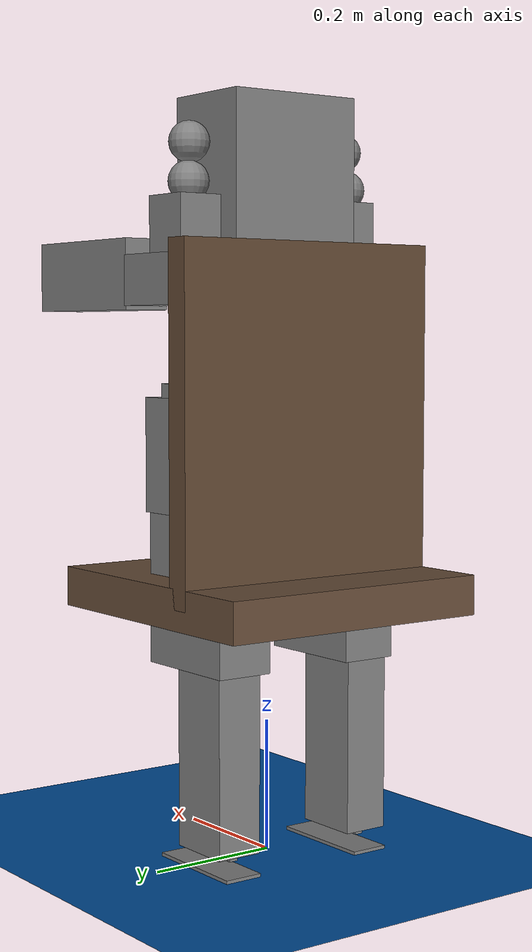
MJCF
<mujoco model="MuJoCo Model">
  <compiler angle="radian"/>

  <option gravity="0 0 -9.81" integrator="implicitfast">
    <flag multiccd="disable"/>
  </option>

  <worldbody>
    <geom name="ground_plane_0" size="5 5 5" type="plane" contype="2" conaffinity="2147483645" friction="2 0.005 0.0001" solref="0.02" rgba="0 0.3 0.6 1"/>
    <geom name="chair_seat" type="box" pos="0 0 0.40" size="0.22 0.22 0.03" contype="2" conaffinity="2147483645" friction="1.2 0.01 0.001" solref="0.01 1" rgba="0.4 0.3 0.22 1"/>
    <geom name="chair_back" type="box" pos="-0.085 0 0.66" size="0.02 0.22 0.26" contype="2" conaffinity="2147483645" friction="1.2 0.01 0.001" solref="0.01 1" rgba="0.38 0.28 0.2 1"/>
    <body name="pelvis" pos="0 0 0.78">
      <inertial pos="0 0 0" quat="1 0 -0.000399148 0" mass="3.814" diaginertia="0.010549 0.0093089 0.0079184"/>
      <joint name="root_free" type="free"/>
      <geom name="shape_1_1" size="0.001" contype="4" conaffinity="2147483643" friction="1 0.005 0.0001" solref="0.02"/>
      <body name="left_hip_pitch_link" pos="0 0.064452 -0.1027">
        <inertial pos="0 0 0" quat="0.954862 0.293964 0.0302556 0.030122" mass="1.35" diaginertia="0.00181517 0.00153422 0.00116212"/>
        <joint name="left_hip_pitch_joint" pos="0 0 0" axis="0 1 0" solreflimit="-10000 -100" limited="true" range="-2.5307 2.8798" actuatorfrclimited="true" actuatorfrcrange="-88 88"/>
        <geom name="shape_2_2" size="0.0412784 0.0494054 0.0585823" pos="-0.00103767 0.0494054 -0.0214614" type="box" contype="4" conaffinity="2147483643" friction="1 0.005 0.0001" solref="0.02"/>
        <body name="left_hip_roll_link" pos="0 0.052 -0.030465">
          <inertial pos="0 0 0" quat="0.977808 -1.97146e-05 0.205576 -0.0403793" mass="1.52" diaginertia="0.00254986 0.00241169 0.00148755"/>
          <joint name="left_hip_roll_joint" pos="0 0 0" axis="0.984744 0 0.17401" solreflimit="-10000 -100" limited="true" range="-0.5236 2.9671" actuatorfrclimited="true" actuatorfrcrange="-88 88"/>
          <geom name="shape_3_3" size="0.0532396 0.0489454 0.0853044" pos="0.0269208 -0.000171173 -0.0388197" type="box" contype="8" conaffinity="2147483639" friction="1 0.005 0.0001" solref="0.02"/>
          <body name="left_hip_yaw_link" pos="0.025001 0 -0.12412">
            <inertial pos="0 0 0" quat="0.600598 0.15832 0.223482 0.751181" mass="1.702" diaginertia="0.00776166 0.00717575 0.00160139"/>
            <joint name="left_hip_yaw_joint" pos="0 0 0" axis="0 0 1" solreflimit="-10000 -100" limited="true" range="-2.7576 2.7576" actuatorfrclimited="true" actuatorfrcrange="-88 88"/>
            <geom name="shape_4_4" size="0.089817 0.0443413 0.113115" pos="-0.0374323 -0.00104196 -0.113115" type="box" contype="8" conaffinity="2147483639" friction="1 0.005 0.0001" solref="0.02"/>
            <body name="left_knee_link" pos="-0.078273 0.0021489 -0.17734">
              <inertial pos="0 0 0" quat="0.923417 -0.0327698 0.0158246 0.382068" mass="1.932" diaginertia="0.0113804 0.0112778 0.00146458"/>
              <joint name="left_knee_joint" pos="0 0 0" axis="0 1 0" solreflimit="-10000 -100" limited="true" range="-0.087267 2.8798" actuatorfrclimited="true" actuatorfrcrange="-139 139"/>
              <geom name="shape_5_5" size="0.0519081 0.0358496 0.177561" pos="0.0120115 -3.68617e-05 -0.137512" type="box" contype="16" conaffinity="2147483631" friction="1 0.005 0.0001" solref="0.02"/>
              <body name="left_ankle_pitch_link" pos="0 -9.4445e-05 -0.30001">
                <inertial pos="0 0 0" mass="0.074" diaginertia="0.0006956 0.0012358 0.0006956"/>
                <joint name="left_ankle_pitch_joint" pos="0 0 0" axis="0 1 0" solreflimit="-10000 -100" limited="true" range="-0.87267 0.5236" actuatorfrclimited="true" actuatorfrcrange="-35 35"/>
                <geom name="shape_6_6" size="0.018 0.00650001 0.0187239" pos="-0.00649999 5.78223e-05 -0.00583397" type="box" contype="16" conaffinity="2147483631" friction="1 0.005 0.0001" solref="0.02"/>
                <body name="left_ankle_roll_link" pos="0 0 -0.017558">
                  <inertial pos="0 0 0" quat="-0.000481092 0.728482 -0.000618967 0.685065" mass="0.608" diaginertia="0.00167218 0.0016161 0.000217621"/>
                  <joint name="left_ankle_roll_joint" pos="0 0 0" axis="1 0 0" solreflimit="-10000 -100" limited="true" range="-0.2618 0.2618" actuatorfrclimited="true" actuatorfrcrange="-35 35"/>
                  <geom name="shape_7_7" size="0.085 0.03 0.006" pos="0.035 0 -0.03" type="box" contype="32" conaffinity="2147483615" friction="1 0.005 0.0001" solref="0.02"/>
                </body>
              </body>
            </body>
          </body>
        </body>
      </body>
      <body name="right_hip_pitch_link" pos="0 -0.064452 -0.1027">
        <inertial pos="0 0 0" quat="0.954862 -0.293964 0.0302556 -0.030122" mass="1.35" diaginertia="0.00181517 0.00153422 0.00116212"/>
        <joint name="right_hip_pitch_joint" pos="0 0 0" axis="0 1 0" solreflimit="-10000 -100" limited="true" range="-2.5307 2.8798" actuatorfrclimited="true" actuatorfrcrange="-88 88"/>
        <geom name="shape_8_8" size="0.0412784 0.0494054 0.0585819" pos="-0.00103767 -0.0494054 -0.0214618" type="box" contype="64" conaffinity="2147483583" friction="1 0.005 0.0001" solref="0.02"/>
        <body name="right_hip_roll_link" pos="0 -0.052 -0.030465">
          <inertial pos="0 0 0" quat="0.977808 1.97146e-05 0.205576 0.0403793" mass="1.52" diaginertia="0.00254986 0.00241169 0.00148755"/>
          <joint name="right_hip_roll_joint" pos="0 0 0" axis="0.984744 0 0.17401" solreflimit="-10000 -100" limited="true" range="-2.9671 0.5236" actuatorfrclimited="true" actuatorfrcrange="-88 88"/>
          <geom name="shape_9_9" size="0.0532396 0.0489454 0.0853044" pos="0.0269208 0.000171173 -0.0388197" type="box" contype="64" conaffinity="2147483583" friction="1 0.005 0.0001" solref="0.02"/>
          <body name="right_hip_yaw_link" pos="0.025001 0 -0.12412">
            <inertial pos="0 0 0" quat="0.751181 0.223482 0.15832 0.600598" mass="1.702" diaginertia="0.00776166 0.00717575 0.00160139"/>
            <joint name="right_hip_yaw_joint" pos="0 0 0" axis="0 0 1" solreflimit="-10000 -100" limited="true" range="-2.7576 2.7576" actuatorfrclimited="true" actuatorfrcrange="-88 88"/>
            <geom name="shape_10_10" size="0.089817 0.0443413 0.113115" pos="-0.0374323 0.00104196 -0.113115" type="box" contype="128" conaffinity="2147483519" friction="1 0.005 0.0001" solref="0.02"/>
            <body name="right_knee_link" pos="-0.078273 -0.0021489 -0.17734">
              <inertial pos="0 0 0" quat="0.923438 0.0345276 0.0116334 -0.382014" mass="1.932" diaginertia="0.011374 0.0112843 0.00146452"/>
              <joint name="right_knee_joint" pos="0 0 0" axis="0 1 0" solreflimit="-10000 -100" limited="true" range="-0.087267 2.8798" actuatorfrclimited="true" actuatorfrcrange="-139 139"/>
              <geom name="shape_11_11" size="0.0519081 0.035848 0.177561" pos="0.0120115 3.48222e-05 -0.137512" type="box" contype="128" conaffinity="2147483519" friction="1 0.005 0.0001" solref="0.02"/>
              <body name="right_ankle_pitch_link" pos="0 9.4445e-05 -0.30001">
                <inertial pos="0 0 0" mass="0.074" diaginertia="0.0006956 0.0012358 0.0006956"/>
                <joint name="right_ankle_pitch_joint" pos="0 0 0" axis="0 1 0" solreflimit="-10000 -100" limited="true" range="-0.87267 0.5236" actuatorfrclimited="true" actuatorfrcrange="-35 35"/>
                <geom name="shape_12_12" size="0.018 0.00650001 0.0187239" pos="-0.00649999 -5.78223e-05 -0.00583397" type="box" contype="256" conaffinity="2147483391" friction="1 0.005 0.0001" solref="0.02"/>
                <body name="right_ankle_roll_link" pos="0 0 -0.017558">
                  <inertial pos="0 0 0" quat="0.000481092 0.728482 0.000618967 0.685065" mass="0.608" diaginertia="0.00167218 0.0016161 0.000217621"/>
                  <joint name="right_ankle_roll_joint" pos="0 0 0" axis="1 0 0" solreflimit="-10000 -100" limited="true" range="-0.2618 0.2618" actuatorfrclimited="true" actuatorfrcrange="-35 35"/>
                  <geom name="shape_13_13" size="0.085 0.03 0.006" pos="0.035 0 -0.03" type="box" contype="256" conaffinity="2147483391" friction="1 0.005 0.0001" solref="0.02"/>
                </body>
              </body>
            </body>
          </body>
        </body>
      </body>
      <body name="torso_link" pos="-0.0039635 0 0.054">
        <inertial pos="0 0 0" quat="0.999683 0.00171655 0.0248299 -0.00373138" mass="9.844" diaginertia="0.065762 0.0535348 0.0307215"/>
        <joint name="waist_yaw_joint" pos="0 0 0" axis="0 0 1" solreflimit="-10000 -100" limited="true" range="-2.618 2.618" actuatorfrclimited="true" actuatorfrcrange="-88 88"/>
        <geom name="shape_14_14" size="0.0751349 0.107714 0.155151" pos="0.00849202 8.23289e-07 0.145212" type="box" contype="32768" conaffinity="2147450879" friction="1 0.005 0.0001" solref="0.02"/>
        <body name="left_shoulder_pitch_link" pos="0.0039563 0.10022 0.23778">
          <inertial pos="0 0 0" quat="0.654152 0.0130459 -0.326267 0.68225" mass="0.718" diaginertia="0.000465864 0.000432842 0.000406394"/>
          <joint name="left_shoulder_pitch_joint" pos="0 0 0" axis="0.000199314 0.961246 0.275692" solreflimit="-10000 -100" limited="true" range="-3.0892 2.6704" actuatorfrclimited="true" actuatorfrcrange="-25 25"/>
          <geom name="shape_15_15" size="0.03" pos="0 0.04 -0.01" contype="512" conaffinity="2147483135" friction="1 0.005 0.0001" solref="0.02"/>
          <body name="left_shoulder_roll_link" pos="0 0.038 -0.013831">
            <inertial pos="0 0 0" quat="0.701256 -0.0196223 -0.00710317 0.712604" mass="0.643" diaginertia="0.000691311 0.000618011 0.000388977"/>
            <joint name="left_shoulder_roll_joint" pos="0 0 0" axis="1 0 0" solreflimit="-10000 -100" limited="true" range="-1.5882 2.2515" actuatorfrclimited="true" actuatorfrcrange="-25 25"/>
            <geom name="shape_16_16" size="0.03" pos="-0.004 0.006 -0.053" contype="512" conaffinity="2147483135" friction="1 0.005 0.0001" solref="0.02"/>
            <body name="left_shoulder_yaw_link" pos="0 0.00624 -0.1032">
              <inertial pos="0 0 0" quat="0.716879 -0.0964829 -0.0679942 0.687134" mass="0.734" diaginertia="0.00106187 0.00103217 0.000400661"/>
              <joint name="left_shoulder_yaw_joint" pos="0 0 0" axis="0 0 1" solreflimit="-10000 -100" limited="true" range="-2.618 2.618" actuatorfrclimited="true" actuatorfrcrange="-25 25"/>
              <geom name="shape_17_17" size="0.0405928 0.0372594 0.0726355" pos="0.00778206 -0.00415307 -0.0410614" type="box" contype="1024" conaffinity="2147482623" friction="1 0.005 0.0001" solref="0.02"/>
              <body name="left_elbow_link" pos="0.015783 0 -0.080518">
                <inertial pos="0 0 0" quat="0.541765 0.636132 0.388821 0.388129" mass="0.6" diaginertia="0.000443035 0.000421612 0.000259353"/>
                <joint name="left_elbow_joint" pos="0 0 0" axis="0 1 0" solreflimit="-10000 -100" limited="true" range="-1.0472 2.0944" actuatorfrclimited="true" actuatorfrcrange="-25 25"/>
                <geom name="shape_18_18" size="0.0648876 0.0330162 0.0376027" pos="0.0351125 0.00176092 -0.00782758" type="box" contype="1024" conaffinity="2147482623" friction="1 0.005 0.0001" solref="0.02"/>
                <body name="left_wrist_roll_rubber_hand" pos="0.1 0.00188791 -0.01">
                  <inertial pos="0 0 0" quat="0.494051 0.504265 0.48416 0.516932" mass="0.356929" diaginertia="0.00200292 0.00194259 0.000195232"/>
                  <joint name="left_wrist_roll_joint" pos="0 0 0" axis="1 0 0" solreflimit="-10000 -100" limited="true" range="-1.97222 1.97222" actuatorfrclimited="true" actuatorfrcrange="-25 25"/>
                  <geom name="shape_19_19" size="0.126609 0.0361836 0.0532413" pos="0.126707 -0.00622354 0.0117148" type="box" contype="2048" conaffinity="2147481599" friction="1 0.005 0.0001" solref="0.02"/>
                </body>
              </body>
            </body>
          </body>
        </body>
        <body name="right_shoulder_pitch_link" pos="0.0039563 -0.10021 0.23778">
          <inertial pos="0 0 0" quat="0.68225 -0.326267 0.0130459 0.654152" mass="0.718" diaginertia="0.000465864 0.000432842 0.000406394"/>
          <joint name="right_shoulder_pitch_joint" pos="0 0 0" axis="-0.000199314 0.961246 -0.275692" solreflimit="-10000 -100" limited="true" range="-3.0892 2.6704" actuatorfrclimited="true" actuatorfrcrange="-25 25"/>
          <geom name="shape_20_20" size="0.03" pos="0 -0.04 -0.01" contype="4096" conaffinity="2147479551" friction="1 0.005 0.0001" solref="0.02"/>
          <body name="right_shoulder_roll_link" pos="0 -0.038 -0.013831">
            <inertial pos="0 0 0" quat="0.712604 -0.00710317 -0.0196223 0.701256" mass="0.643" diaginertia="0.000691311 0.000618011 0.000388977"/>
            <joint name="right_shoulder_roll_joint" pos="0 0 0" axis="1 0 0" solreflimit="-10000 -100" limited="true" range="-2.2515 1.5882" actuatorfrclimited="true" actuatorfrcrange="-25 25"/>
            <geom name="shape_21_21" size="0.03" pos="-0.004 -0.006 -0.053" contype="4096" conaffinity="2147479551" friction="1 0.005 0.0001" solref="0.02"/>
            <body name="right_shoulder_yaw_link" pos="0 -0.00624 -0.1032">
              <inertial pos="0 0 0" quat="0.687134 -0.0679942 -0.0964829 0.716879" mass="0.734" diaginertia="0.00106187 0.00103217 0.000400661"/>
              <joint name="right_shoulder_yaw_joint" pos="0 0 0" axis="0 0 1" solreflimit="-10000 -100" limited="true" range="-2.618 2.618" actuatorfrclimited="true" actuatorfrcrange="-25 25"/>
              <geom name="shape_22_22" size="0.0405928 0.0372594 0.0726355" pos="0.00778206 0.00415307 -0.0410614" type="box" contype="8192" conaffinity="2147475455" friction="1 0.005 0.0001" solref="0.02"/>
              <body name="right_elbow_link" pos="0.015783 0 -0.080518">
                <inertial pos="0 0 0" quat="0.388129 0.388821 0.636132 0.541765" mass="0.6" diaginertia="0.000443035 0.000421612 0.000259353"/>
                <joint name="right_elbow_joint" pos="0 0 0" axis="0 1 0" solreflimit="-10000 -100" limited="true" range="-1.0472 2.0944" actuatorfrclimited="true" actuatorfrcrange="-25 25"/>
                <geom name="shape_23_23" size="0.0648876 0.0330162 0.0376027" pos="0.0351125 -0.00176092 -0.00782758" type="box" contype="8192" conaffinity="2147475455" friction="1 0.005 0.0001" solref="0.02"/>
                <body name="right_wrist_roll_rubber_hand" pos="0.1 -0.00188791 -0.01">
                  <inertial pos="0 0 0" quat="0.516932 0.48416 0.504265 0.494051" mass="0.356929" diaginertia="0.00200292 0.00194259 0.000195232"/>
                  <joint name="right_wrist_roll_joint" pos="0 0 0" axis="1 0 0" solreflimit="-10000 -100" limited="true" range="-1.97222 1.97222" actuatorfrclimited="true" actuatorfrcrange="-25 25"/>
                  <geom name="shape_24_24" size="0.126609 0.0361836 0.0532413" pos="0.126707 0.00622354 0.0117148" type="box" contype="16384" conaffinity="2147467263" friction="1 0.005 0.0001" solref="0.02"/>
                </body>
              </body>
            </body>
          </body>
        </body>
      </body>
    </body>
  </worldbody>

  <contact>
    <exclude body1="pelvis" body2="left_hip_pitch_link"/>
    <exclude body1="pelvis" body2="right_hip_pitch_link"/>
    <exclude body1="pelvis" body2="torso_link"/>
    <exclude body1="left_hip_pitch_link" body2="left_hip_roll_link"/>
    <exclude body1="left_hip_roll_link" body2="left_hip_yaw_link"/>
    <exclude body1="left_hip_yaw_link" body2="left_knee_link"/>
    <exclude body1="left_knee_link" body2="left_ankle_pitch_link"/>
    <exclude body1="left_ankle_pitch_link" body2="left_ankle_roll_link"/>
    <exclude body1="right_hip_pitch_link" body2="right_hip_roll_link"/>
    <exclude body1="right_hip_roll_link" body2="right_hip_yaw_link"/>
    <exclude body1="right_hip_yaw_link" body2="right_knee_link"/>
    <exclude body1="right_knee_link" body2="right_ankle_pitch_link"/>
    <exclude body1="right_ankle_pitch_link" body2="right_ankle_roll_link"/>
    <exclude body1="torso_link" body2="left_shoulder_pitch_link"/>
    <exclude body1="torso_link" body2="right_shoulder_pitch_link"/>
    <exclude body1="left_shoulder_pitch_link" body2="left_shoulder_roll_link"/>
    <exclude body1="left_shoulder_roll_link" body2="left_shoulder_yaw_link"/>
    <exclude body1="left_shoulder_yaw_link" body2="left_elbow_link"/>
    <exclude body1="left_elbow_link" body2="left_wrist_roll_rubber_hand"/>
    <exclude body1="right_shoulder_pitch_link" body2="right_shoulder_roll_link"/>
    <exclude body1="right_shoulder_roll_link" body2="right_shoulder_yaw_link"/>
    <exclude body1="right_shoulder_yaw_link" body2="right_elbow_link"/>
    <exclude body1="right_elbow_link" body2="right_wrist_roll_rubber_hand"/>
  </contact>

  <actuator>
    <general name="left_hip_pitch_joint_pos" joint="left_hip_pitch_joint" biastype="affine" gainprm="100" biasprm="0 -100"/>
    <general name="left_hip_pitch_joint_vel" joint="left_hip_pitch_joint" biastype="affine" gainprm="5" biasprm="0 0 -5"/>
    <general name="left_hip_roll_joint_pos" joint="left_hip_roll_joint" biastype="affine" gainprm="100" biasprm="0 -100"/>
    <general name="left_hip_roll_joint_vel" joint="left_hip_roll_joint" biastype="affine" gainprm="5" biasprm="0 0 -5"/>
    <general name="left_hip_yaw_joint_pos" joint="left_hip_yaw_joint" biastype="affine" gainprm="100" biasprm="0 -100"/>
    <general name="left_hip_yaw_joint_vel" joint="left_hip_yaw_joint" biastype="affine" gainprm="5" biasprm="0 0 -5"/>
    <general name="left_knee_joint_pos" joint="left_knee_joint" biastype="affine" gainprm="100" biasprm="0 -100"/>
    <general name="left_knee_joint_vel" joint="left_knee_joint" biastype="affine" gainprm="5" biasprm="0 0 -5"/>
    <general name="left_ankle_pitch_joint_pos" joint="left_ankle_pitch_joint" biastype="affine" gainprm="100" biasprm="0 -100"/>
    <general name="left_ankle_pitch_joint_vel" joint="left_ankle_pitch_joint" biastype="affine" gainprm="5" biasprm="0 0 -5"/>
    <general name="left_ankle_roll_joint_pos" joint="left_ankle_roll_joint" biastype="affine" gainprm="100" biasprm="0 -100"/>
    <general name="left_ankle_roll_joint_vel" joint="left_ankle_roll_joint" biastype="affine" gainprm="5" biasprm="0 0 -5"/>
    <general name="right_hip_pitch_joint_pos" joint="right_hip_pitch_joint" biastype="affine" gainprm="100" biasprm="0 -100"/>
    <general name="right_hip_pitch_joint_vel" joint="right_hip_pitch_joint" biastype="affine" gainprm="5" biasprm="0 0 -5"/>
    <general name="right_hip_roll_joint_pos" joint="right_hip_roll_joint" biastype="affine" gainprm="100" biasprm="0 -100"/>
    <general name="right_hip_roll_joint_vel" joint="right_hip_roll_joint" biastype="affine" gainprm="5" biasprm="0 0 -5"/>
    <general name="right_hip_yaw_joint_pos" joint="right_hip_yaw_joint" biastype="affine" gainprm="100" biasprm="0 -100"/>
    <general name="right_hip_yaw_joint_vel" joint="right_hip_yaw_joint" biastype="affine" gainprm="5" biasprm="0 0 -5"/>
    <general name="right_knee_joint_pos" joint="right_knee_joint" biastype="affine" gainprm="100" biasprm="0 -100"/>
    <general name="right_knee_joint_vel" joint="right_knee_joint" biastype="affine" gainprm="5" biasprm="0 0 -5"/>
    <general name="right_ankle_pitch_joint_pos" joint="right_ankle_pitch_joint" biastype="affine" gainprm="100" biasprm="0 -100"/>
    <general name="right_ankle_pitch_joint_vel" joint="right_ankle_pitch_joint" biastype="affine" gainprm="5" biasprm="0 0 -5"/>
    <general name="right_ankle_roll_joint_pos" joint="right_ankle_roll_joint" biastype="affine" gainprm="100" biasprm="0 -100"/>
    <general name="right_ankle_roll_joint_vel" joint="right_ankle_roll_joint" biastype="affine" gainprm="5" biasprm="0 0 -5"/>
    <general name="waist_yaw_joint_pos" joint="waist_yaw_joint" biastype="affine" gainprm="100" biasprm="0 -100"/>
    <general name="waist_yaw_joint_vel" joint="waist_yaw_joint" biastype="affine" gainprm="5" biasprm="0 0 -5"/>
    <general name="left_shoulder_pitch_joint_pos" joint="left_shoulder_pitch_joint" biastype="affine" gainprm="100" biasprm="0 -100"/>
    <general name="left_shoulder_pitch_joint_vel" joint="left_shoulder_pitch_joint" biastype="affine" gainprm="5" biasprm="0 0 -5"/>
    <general name="left_shoulder_roll_joint_pos" joint="left_shoulder_roll_joint" biastype="affine" gainprm="100" biasprm="0 -100"/>
    <general name="left_shoulder_roll_joint_vel" joint="left_shoulder_roll_joint" biastype="affine" gainprm="5" biasprm="0 0 -5"/>
    <general name="left_shoulder_yaw_joint_pos" joint="left_shoulder_yaw_joint" biastype="affine" gainprm="100" biasprm="0 -100"/>
    <general name="left_shoulder_yaw_joint_vel" joint="left_shoulder_yaw_joint" biastype="affine" gainprm="5" biasprm="0 0 -5"/>
    <general name="left_elbow_joint_pos" joint="left_elbow_joint" biastype="affine" gainprm="100" biasprm="0 -100"/>
    <general name="left_elbow_joint_vel" joint="left_elbow_joint" biastype="affine" gainprm="5" biasprm="0 0 -5"/>
    <general name="left_wrist_roll_joint_pos" joint="left_wrist_roll_joint" biastype="affine" gainprm="100" biasprm="0 -100"/>
    <general name="left_wrist_roll_joint_vel" joint="left_wrist_roll_joint" biastype="affine" gainprm="5" biasprm="0 0 -5"/>
    <general name="right_shoulder_pitch_joint_pos" joint="right_shoulder_pitch_joint" biastype="affine" gainprm="100" biasprm="0 -100"/>
    <general name="right_shoulder_pitch_joint_vel" joint="right_shoulder_pitch_joint" biastype="affine" gainprm="5" biasprm="0 0 -5"/>
    <general name="right_shoulder_roll_joint_pos" joint="right_shoulder_roll_joint" biastype="affine" gainprm="100" biasprm="0 -100"/>
    <general name="right_shoulder_roll_joint_vel" joint="right_shoulder_roll_joint" biastype="affine" gainprm="5" biasprm="0 0 -5"/>
    <general name="right_shoulder_yaw_joint_pos" joint="right_shoulder_yaw_joint" biastype="affine" gainprm="100" biasprm="0 -100"/>
    <general name="right_shoulder_yaw_joint_vel" joint="right_shoulder_yaw_joint" biastype="affine" gainprm="5" biasprm="0 0 -5"/>
    <general name="right_elbow_joint_pos" joint="right_elbow_joint" biastype="affine" gainprm="100" biasprm="0 -100"/>
    <general name="right_elbow_joint_vel" joint="right_elbow_joint" biastype="affine" gainprm="5" biasprm="0 0 -5"/>
    <general name="right_wrist_roll_joint_pos" joint="right_wrist_roll_joint" biastype="affine" gainprm="100" biasprm="0 -100"/>
    <general name="right_wrist_roll_joint_vel" joint="right_wrist_roll_joint" biastype="affine" gainprm="5" biasprm="0 0 -5"/>
  </actuator>
</mujoco>
